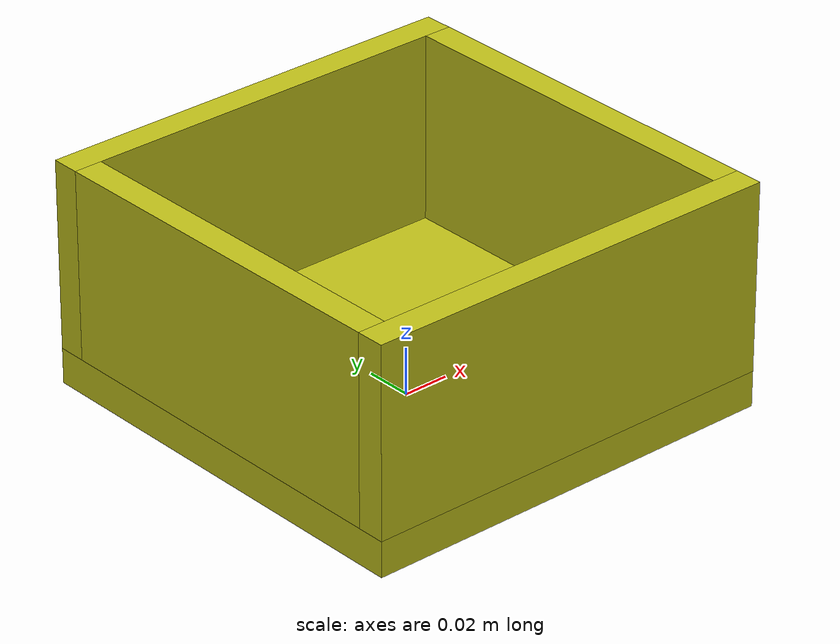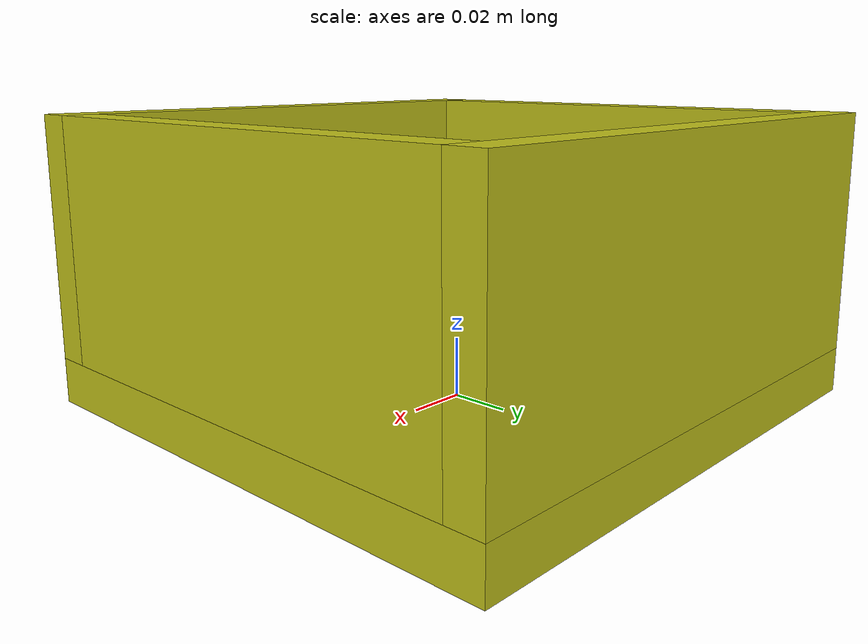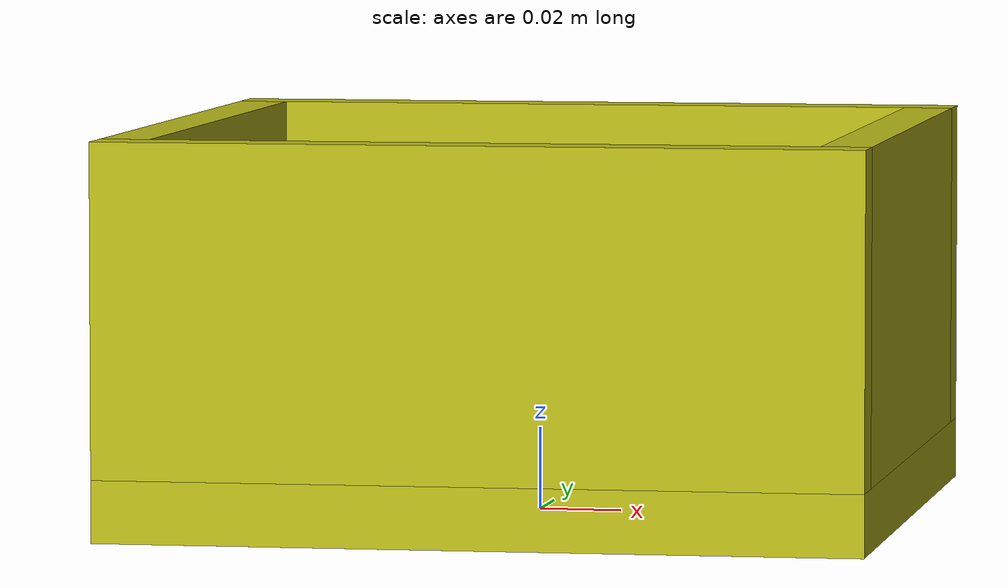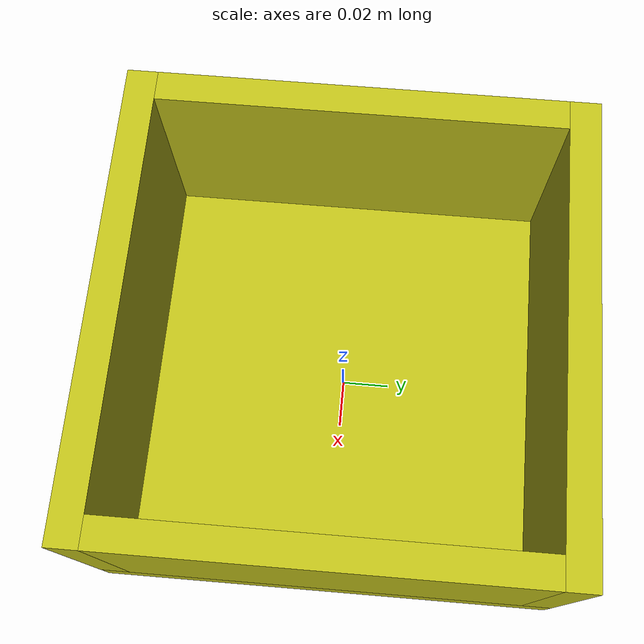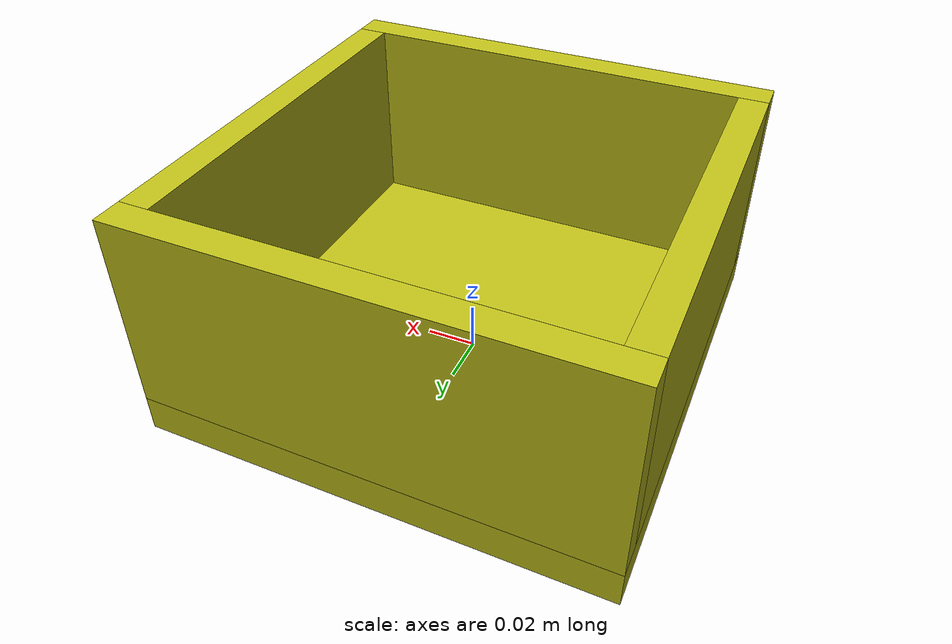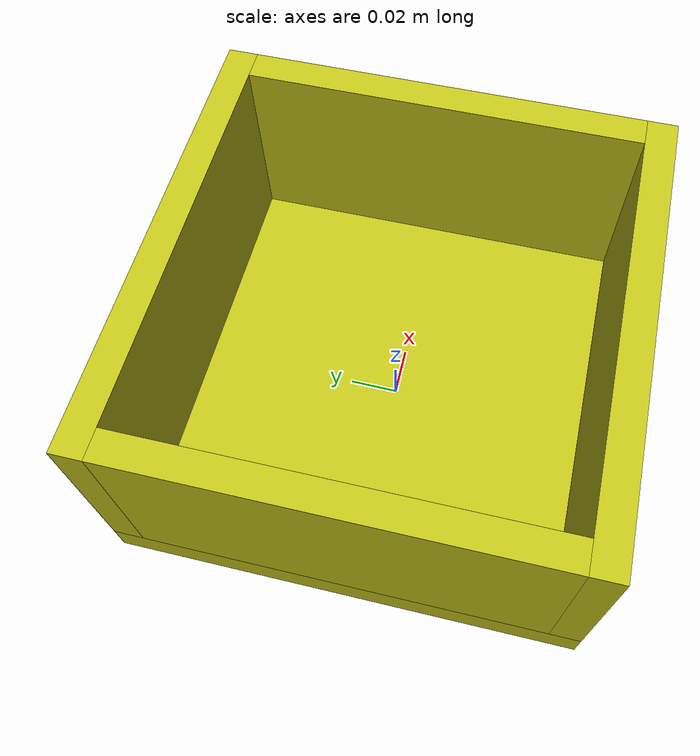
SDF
<?xml version="1.0" ?>
<sdf version="1.9">
  <model name="bin_yellow">
    <static>true</static>
    <link name="bin_link">
      <collision name="floor_collision"><pose>0 0 0.0075 0 0 0</pose><geometry><box><size>0.184 0.184 0.015</size></box></geometry></collision>
      <visual name="floor_visual"><pose>0 0 0.0075 0 0 0</pose><geometry><box><size>0.184 0.184 0.015</size></box></geometry><material><ambient>0.55 0.55 0.08 1</ambient><diffuse>0.75 0.75 0.10 1</diffuse></material></visual>
      <collision name="wall_n_collision"><pose>0 0.086 0.055 0 0 0</pose><geometry><box><size>0.184 0.012 0.08</size></box></geometry></collision>
      <visual name="wall_n_visual"><pose>0 0.086 0.055 0 0 0</pose><geometry><box><size>0.184 0.012 0.08</size></box></geometry><material><ambient>0.55 0.55 0.08 1</ambient><diffuse>0.75 0.75 0.10 1</diffuse></material></visual>
      <collision name="wall_s_collision"><pose>0 -0.086 0.055 0 0 0</pose><geometry><box><size>0.184 0.012 0.08</size></box></geometry></collision>
      <visual name="wall_s_visual"><pose>0 -0.086 0.055 0 0 0</pose><geometry><box><size>0.184 0.012 0.08</size></box></geometry><material><ambient>0.55 0.55 0.08 1</ambient><diffuse>0.75 0.75 0.10 1</diffuse></material></visual>
      <collision name="wall_e_collision"><pose>0.086 0 0.055 0 0 0</pose><geometry><box><size>0.012 0.16 0.08</size></box></geometry></collision>
      <visual name="wall_e_visual"><pose>0.086 0 0.055 0 0 0</pose><geometry><box><size>0.012 0.16 0.08</size></box></geometry><material><ambient>0.55 0.55 0.08 1</ambient><diffuse>0.75 0.75 0.10 1</diffuse></material></visual>
      <collision name="wall_w_collision"><pose>-0.086 0 0.055 0 0 0</pose><geometry><box><size>0.012 0.16 0.08</size></box></geometry></collision>
      <visual name="wall_w_visual"><pose>-0.086 0 0.055 0 0 0</pose><geometry><box><size>0.012 0.16 0.08</size></box></geometry><material><ambient>0.55 0.55 0.08 1</ambient><diffuse>0.75 0.75 0.10 1</diffuse></material></visual>
    </link>
  </model>
</sdf>
